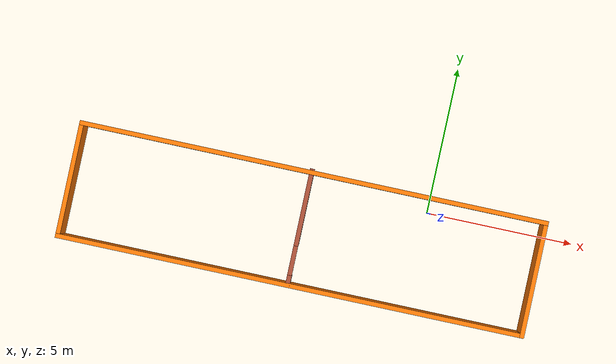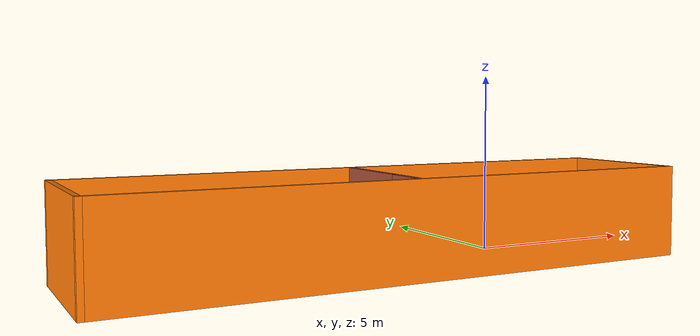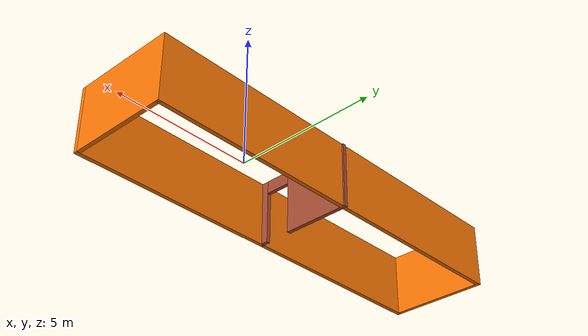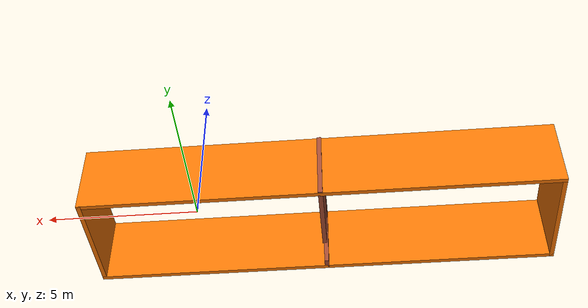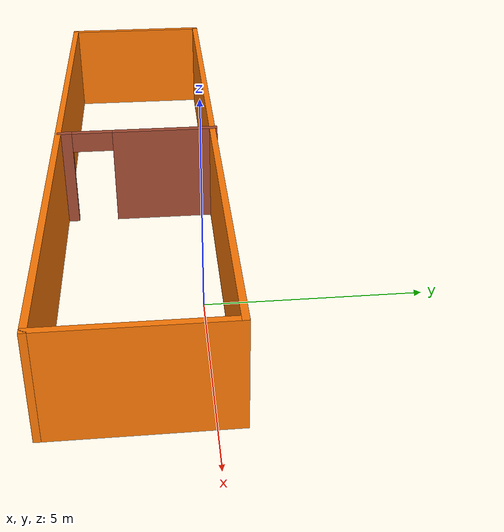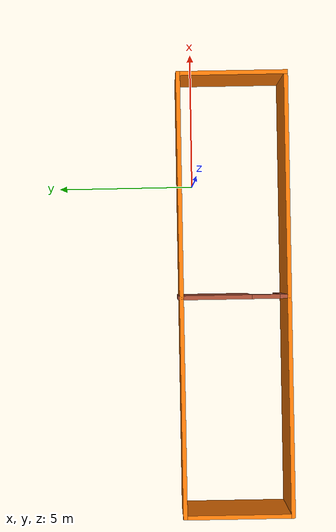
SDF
<?xml version='1.0'?>
<sdf version='1.6'>
  <model name='Better_hallway'>
    <pose frame=''>-4.031 -1.38024 0 0 -0 0</pose>
    <link name='Wall_13'>
      <collision name='Wall_13_Collision'>
        <geometry>
          <box>
            <size>16 0.15 2.5</size>
          </box>
        </geometry>
        <pose frame=''>0 0 1.25 0 -0 0</pose>
      </collision>
      <visual name='Wall_13_Visual'>
        <pose frame=''>0 0 1.25 0 -0 0</pose>
        <geometry>
          <box>
            <size>16 0.15 2.5</size>
          </box>
        </geometry>
        <material>
          <script>
            <uri>file://media/materials/scripts/gazebo.material</uri>
            <name>Gazebo/Grey</name>
          </script>
          <ambient>0.996078 0.47451 0.0196078 1</ambient>
        </material>
        <meta>
          <layer>0</layer>
        </meta>
      </visual>
      <pose frame=''>1e-06 1.89924 0 0 -0 0</pose>
    </link>
    <link name='Wall_14'>
      <collision name='Wall_14_Collision'>
        <geometry>
          <box>
            <size>4 0.15 2.5</size>
          </box>
        </geometry>
        <pose frame=''>0 0 1.25 0 -0 0</pose>
      </collision>
      <visual name='Wall_14_Visual'>
        <pose frame=''>0 0 1.25 0 -0 0</pose>
        <geometry>
          <box>
            <size>4 0.15 2.5</size>
          </box>
        </geometry>
        <material>
          <script>
            <uri>file://media/materials/scripts/gazebo.material</uri>
            <name>Gazebo/Grey</name>
          </script>
          <ambient>0.996078 0.47451 0.0196078 1</ambient>
        </material>
        <meta>
          <layer>0</layer>
        </meta>
      </visual>
      <pose frame=''>7.925 -0.025765 0 0 0 -1.5708</pose>
    </link>
    <link name='Wall_15'>
      <collision name='Wall_15_Collision'>
        <geometry>
          <box>
            <size>16 0.15 2.5</size>
          </box>
        </geometry>
        <pose frame=''>0 0 1.25 0 -0 0</pose>
      </collision>
      <visual name='Wall_15_Visual'>
        <pose frame=''>0 0 1.25 0 -0 0</pose>
        <geometry>
          <box>
            <size>16 0.15 2.5</size>
          </box>
        </geometry>
        <material>
          <script>
            <uri>file://media/materials/scripts/gazebo.material</uri>
            <name>Gazebo/Grey</name>
          </script>
          <ambient>0.996078 0.47451 0.0196078 1</ambient>
        </material>
        <meta>
          <layer>0</layer>
        </meta>
      </visual>
      <pose frame=''>1e-06 -1.95077 0 0 -0 3.14159</pose>
    </link>
    <link name='Wall_16'>
      <collision name='Wall_16_Collision'>
        <geometry>
          <box>
            <size>4 0.15 2.5</size>
          </box>
        </geometry>
        <pose frame=''>0 0 1.25 0 -0 0</pose>
      </collision>
      <visual name='Wall_16_Visual'>
        <pose frame=''>0 0 1.25 0 -0 0</pose>
        <geometry>
          <box>
            <size>4 0.15 2.5</size>
          </box>
        </geometry>
        <material>
          <script>
            <uri>file://media/materials/scripts/gazebo.material</uri>
            <name>Gazebo/Grey</name>
          </script>
          <ambient>0.996078 0.47451 0.0196078 1</ambient>
        </material>
        <meta>
          <layer>0</layer>
        </meta>
      </visual>
      <pose frame=''>-7.92496 -0.025955 0 0 -0 1.57078</pose>
    </link>
    <link name='Wall_18'>
      <pose frame=''>-0.08172 0.025956 0 0 0 -1.5708</pose>
      <visual name='Wall_18_Visual_0'>
        <pose frame=''>-0.682989 0 1.25 0 -0 0</pose>
        <geometry>
          <box>
            <size>2.63402 0.15 2.5</size>
          </box>
        </geometry>
        <material>
          <script>
            <uri>file://media/materials/scripts/gazebo.material</uri>
            <name>Gazebo/Bricks</name>
          </script>
          <ambient>1 1 1 1</ambient>
        </material>
        <meta>
          <layer>0</layer>
        </meta>
      </visual>
      <collision name='Wall_18_Collision_0'>
        <geometry>
          <box>
            <size>2.63402 0.15 2.5</size>
          </box>
        </geometry>
        <pose frame=''>-0.682989 0 1.25 0 -0 0</pose>
      </collision>
      <visual name='Wall_18_Visual_1'>
        <pose frame=''>1.81701 0 1.25 0 -0 0</pose>
        <geometry>
          <box>
            <size>0.365977 0.15 2.5</size>
          </box>
        </geometry>
        <material>
          <script>
            <uri>file://media/materials/scripts/gazebo.material</uri>
            <name>Gazebo/Bricks</name>
          </script>
          <ambient>1 1 1 1</ambient>
        </material>
        <meta>
          <layer>0</layer>
        </meta>
      </visual>
      <collision name='Wall_18_Collision_1'>
        <geometry>
          <box>
            <size>0.365977 0.15 2.5</size>
          </box>
        </geometry>
        <pose frame=''>1.81701 0 1.25 0 -0 0</pose>
      </collision>
      <visual name='Wall_18_Visual_2'>
        <pose frame=''>1.13402 0 2.25 0 -0 0</pose>
        <geometry>
          <box>
            <size>1 0.15 0.5</size>
          </box>
        </geometry>
        <material>
          <script>
            <uri>file://media/materials/scripts/gazebo.material</uri>
            <name>Gazebo/Bricks</name>
          </script>
          <ambient>1 1 1 1</ambient>
        </material>
        <meta>
          <layer>0</layer>
        </meta>
      </visual>
      <collision name='Wall_18_Collision_2'>
        <geometry>
          <box>
            <size>1 0.15 0.5</size>
          </box>
        </geometry>
        <pose frame=''>1.13402 0 2.25 0 -0 0</pose>
      </collision>
    </link>
    <static>1</static>
  </model>
</sdf>
